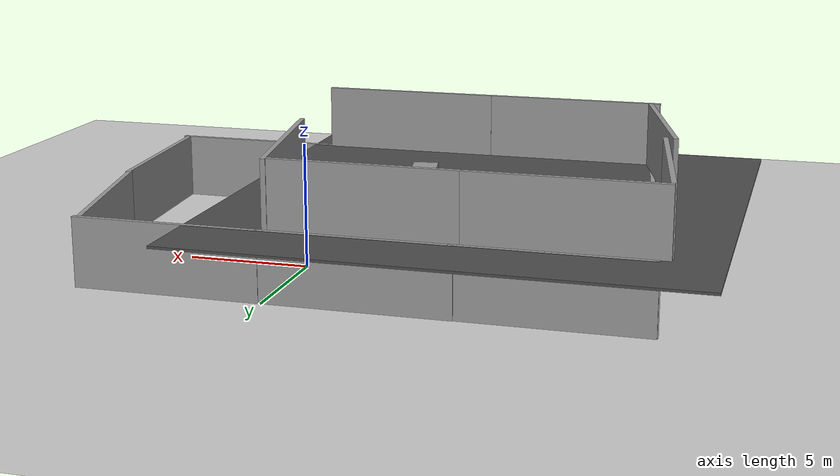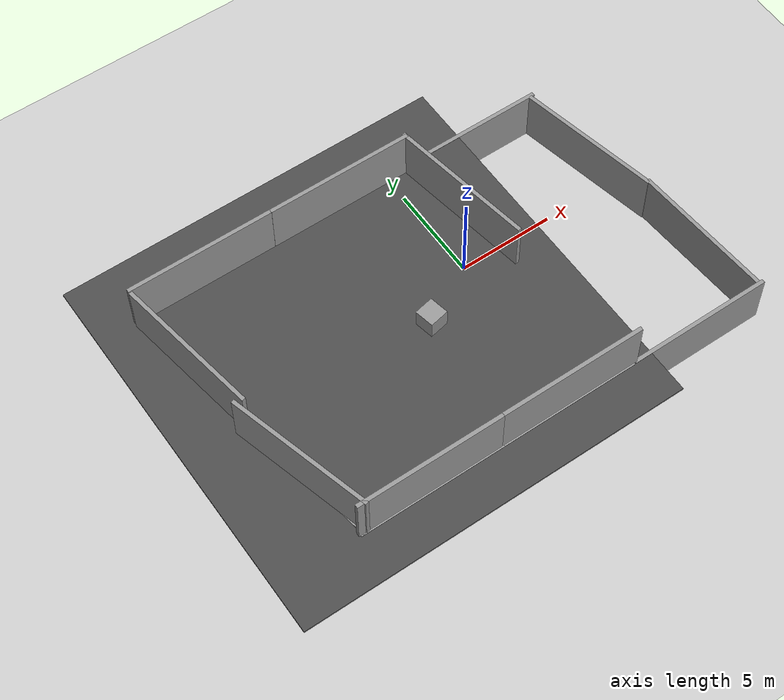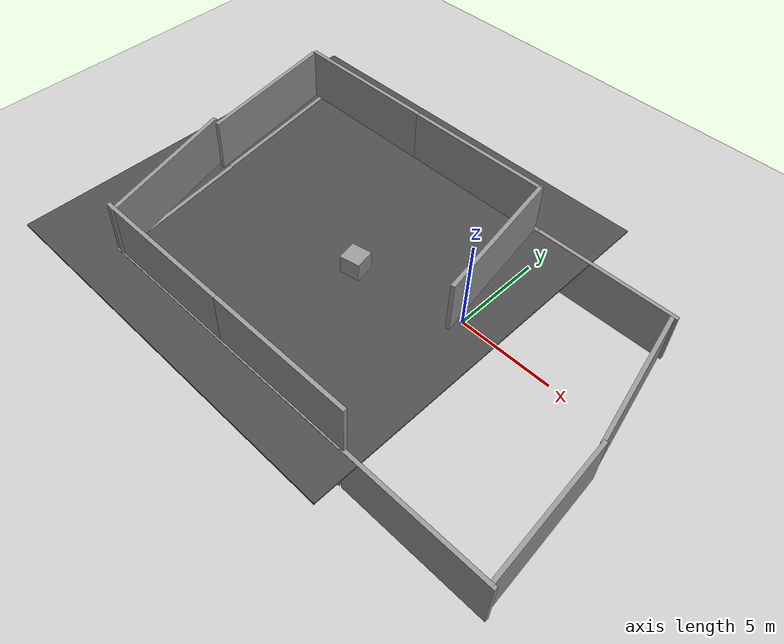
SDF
<sdf version="1.6">
 <world name="default">
  <light name="sun" type="directional">
   <pose>0 0 10 0 -0 0</pose>
   <diffuse>0.8 0.8 0.8 1</diffuse>
   <specular>0.1 0.1 0.1 1</specular>
   <attenuation>
    <range>1000</range>
    <constant>0.9</constant>
    <linear>0.01</linear>
    <quadratic>0.001</quadratic>
   </attenuation>
   <direction>-0.5 0.5 -1</direction>
  </light>
  <model name="ground_plane">
   <static>1</static>
   <link name="link">
    <collision name="collision">
     <geometry><plane><normal>0 0 1</normal><size>100 100</size></plane></geometry>
     <surface><friction><ode><mu>100</mu><mu2>50</mu2></ode></friction></surface>
    </collision>
    <visual name="visual">
     <cast_shadows>0</cast_shadows>
     <geometry><plane><normal>0 0 1</normal><size>100 100</size></plane></geometry>
     <material>
      <script><uri>file://media/materials/scripts/gazebo.material</uri><name>Gazebo/Grey</name></script>
     </material>
    </visual>
   </link>
  </model>
  <gravity>0 0 -9.8</gravity>
  <magnetic_field>6e-06 2.3e-05 -4.2e-05</magnetic_field>
  <atmosphere type="adiabatic"/>
  <physics name="default_physics" default="0" type="ode">
   <max_step_size>0.001</max_step_size>
   <real_time_factor>1</real_time_factor>
   <real_time_update_rate>1000</real_time_update_rate>
  </physics>
  <scene><ambient>0.4 0.4 0.4 1</ambient><background>0.7 0.7 0.7 1</background><shadows>1</shadows></scene>
  <spherical_coordinates>
   <surface_model>EARTH_WGS84</surface_model>
   <latitude_deg>0</latitude_deg>
   <longitude_deg>0</longitude_deg>
   <elevation>0</elevation>
   <heading_deg>0</heading_deg>
  </spherical_coordinates>
  <model name="grey_wall">
   <static>1</static>
   <link name="link">
    <pose>0 0 1.4 0 -0 0</pose>
    <collision name="collision"><geometry><box><size>7.5 0.2 2.8</size></box></geometry></collision>
    <visual name="visual">
     <cast_shadows>0</cast_shadows>
     <geometry><box><size>7.5 0.2 2.8</size></box></geometry>
     <material>
      <script>
       <uri>model://grey_wall/materials/scripts</uri>
       <uri>model://grey_wall/materials/textures</uri>
       <name>vrc/grey_wall</name>
      </script>
     </material>
    </visual>
   </link>
   <pose>5.9411 -9.87012 0 0 -0 0</pose>
  </model>
  <model name="grey_wall_clone">
   <static>1</static>
   <link name="link">
    <pose>0 0 1.4 0 -0 0</pose>
    <collision name="collision"><geometry><box><size>7.5 0.2 2.8</size></box></geometry></collision>
    <visual name="visual">
     <cast_shadows>0</cast_shadows>
     <geometry><box><size>7.5 0.2 2.8</size></box></geometry>
     <material>
      <script>
       <uri>model://grey_wall/materials/scripts</uri>
       <uri>model://grey_wall/materials/textures</uri>
       <name>vrc/grey_wall</name>
      </script>
     </material>
    </visual>
   </link>
   <pose>-1.62631 -9.88557 0 0 -0 0</pose>
  </model>
  <model name="grey_wall_clone_0">
   <static>1</static>
   <link name="link">
    <pose>0 0 1.4 0 -0 0</pose>
    <collision name="collision"><geometry><box><size>7.5 0.2 2.8</size></box></geometry></collision>
    <visual name="visual">
     <cast_shadows>0</cast_shadows>
     <geometry><box><size>7.5 0.2 2.8</size></box></geometry>
     <material>
      <script>
       <uri>model://grey_wall/materials/scripts</uri>
       <uri>model://grey_wall/materials/textures</uri>
       <name>vrc/grey_wall</name>
      </script>
     </material>
    </visual>
   </link>
   <pose>-8.82697 -9.88725 0 0 -0 0</pose>
  </model>
  <model name="grey_wall_clone_1">
   <static>1</static>
   <link name="link">
    <pose>0 0 1.4 0 -0 0</pose>
    <collision name="collision"><geometry><box><size>7.5 0.2 2.8</size></box></geometry></collision>
    <visual name="visual">
     <cast_shadows>0</cast_shadows>
     <geometry><box><size>7.5 0.2 2.8</size></box></geometry>
     <material>
      <script>
       <uri>model://grey_wall/materials/scripts</uri>
       <uri>model://grey_wall/materials/textures</uri>
       <name>vrc/grey_wall</name>
      </script>
     </material>
    </visual>
   </link>
   <pose>-12.9131 -6.23621 0 0 -0 1.71464</pose>
  </model>
  <model name="grey_wall_clone_1_clone">
   <static>1</static>
   <link name="link">
    <pose>0 0 1.4 0 -0 0</pose>
    <collision name="collision"><geometry><box><size>7.5 0.2 2.8</size></box></geometry></collision>
    <visual name="visual">
     <cast_shadows>0</cast_shadows>
     <geometry><box><size>7.5 0.2 2.8</size></box></geometry>
     <material>
      <script>
       <uri>model://grey_wall/materials/scripts</uri>
       <uri>model://grey_wall/materials/textures</uri>
       <name>vrc/grey_wall</name>
      </script>
     </material>
    </visual>
   </link>
   <pose>-14.0137 1.14074 0 0 -0 1.71464</pose>
  </model>
  <model name="grey_wall_clone_0_clone">
   <static>1</static>
   <link name="link">
    <pose>0 0 1.4 0 -0 0</pose>
    <collision name="collision"><geometry><box><size>7.5 0.2 2.8</size></box></geometry></collision>
    <visual name="visual">
     <cast_shadows>0</cast_shadows>
     <geometry><box><size>7.5 0.2 2.8</size></box></geometry>
     <material>
      <script>
       <uri>model://grey_wall/materials/scripts</uri>
       <uri>model://grey_wall/materials/textures</uri>
       <name>vrc/grey_wall</name>
      </script>
     </material>
    </visual>
   </link>
   <pose>-10.8585 4.82392 0 0 -0 0</pose>
  </model>
  <model name="grey_wall_clone_0_clone_0">
   <static>1</static>
   <link name="link">
    <pose>0 0 1.4 0 -0 0</pose>
    <collision name="collision"><geometry><box><size>7.5 0.2 2.8</size></box></geometry></collision>
    <visual name="visual">
     <cast_shadows>0</cast_shadows>
     <geometry><box><size>7.5 0.2 2.8</size></box></geometry>
     <material>
      <script>
       <uri>model://grey_wall/materials/scripts</uri>
       <uri>model://grey_wall/materials/textures</uri>
       <name>vrc/grey_wall</name>
      </script>
     </material>
    </visual>
   </link>
   <pose>-3.5747 4.85596 0 0 -0 0</pose>
  </model>
  <model name="grey_wall_clone_0_clone_1">
   <static>1</static>
   <link name="link">
    <pose>0 0 1.4 0 -0 0</pose>
    <collision name="collision"><geometry><box><size>7.5 0.2 2.8</size></box></geometry></collision>
    <visual name="visual">
     <cast_shadows>0</cast_shadows>
     <geometry><box><size>7.5 0.2 2.8</size></box></geometry>
     <material>
      <script>
       <uri>model://grey_wall/materials/scripts</uri>
       <uri>model://grey_wall/materials/textures</uri>
       <name>vrc/grey_wall</name>
      </script>
     </material>
    </visual>
   </link>
   <pose>9.19737 -6.11998 0 0 -0 1.64056</pose>
  </model>
  <model name="grey_wall_clone_0_clone_1_clone">
   <static>1</static>
   <link name="link">
    <pose>0 0 1.4 0 -0 0</pose>
    <collision name="collision"><geometry><box><size>7.5 0.2 2.8</size></box></geometry></collision>
    <visual name="visual">
     <cast_shadows>0</cast_shadows>
     <geometry><box><size>7.5 0.2 2.8</size></box></geometry>
     <material>
      <script>
       <uri>model://grey_wall/materials/scripts</uri>
       <uri>model://grey_wall/materials/textures</uri>
       <name>vrc/grey_wall</name>
      </script>
     </material>
    </visual>
   </link>
   <pose>8.13916 1.1548 0 0 -0 1.7754</pose>
  </model>
  <model name="grey_wall_clone_0_clone_0_clone">
   <static>1</static>
   <link name="link">
    <pose>0 0 1.4 0 -0 0</pose>
    <collision name="collision"><geometry><box><size>7.5 0.2 2.8</size></box></geometry></collision>
    <visual name="visual">
     <cast_shadows>0</cast_shadows>
     <geometry><box><size>7.5 0.2 2.8</size></box></geometry>
     <material>
      <script>
       <uri>model://grey_wall/materials/scripts</uri>
       <uri>model://grey_wall/materials/textures</uri>
       <name>vrc/grey_wall</name>
      </script>
     </material>
    </visual>
   </link>
   <pose>3.85959 4.8758 0 0 -0 0</pose>
  </model>
  <model name="asphalt_plane_0">
   <static>1</static>
   <link name="link">
    <collision name="collision"><geometry><box><size>20 20 0.1</size></box></geometry></collision>
    <visual name="visual">
     <cast_shadows>0</cast_shadows>
     <geometry><box><size>20 20 0.1</size></box></geometry>
     <material>
      <script>
       <uri>model://asphalt_plane/materials/scripts</uri>
       <uri>model://asphalt_plane/materials/textures</uri>
       <name>vrc/asphalt</name>
      </script>
     </material>
    </visual>
   </link>
   <pose>-6.91323 -2.16638 2.73555 0 -0 0</pose>
  </model>
  <model name="grey_wall_clone_2">
   <static>1</static>
   <link name="link">
    <pose>0 0 1.4 0 -0 0</pose>
    <collision name="collision"><geometry><box><size>7.5 0.2 2.8</size></box></geometry></collision>
    <visual name="visual">
     <cast_shadows>0</cast_shadows>
     <geometry><box><size>7.5 0.2 2.8</size></box></geometry>
     <material>
      <script>
       <uri>model://grey_wall/materials/scripts</uri>
       <uri>model://grey_wall/materials/textures</uri>
       <name>vrc/grey_wall</name>
      </script>
     </material>
    </visual>
   </link>
   <pose>-8.919 -9.81201 2.67922 0 -0 0</pose>
  </model>
  <model name="grey_wall_clone_2_clone">
   <static>1</static>
   <link name="link">
    <pose>0 0 1.4 0 -0 0</pose>
    <collision name="collision"><geometry><box><size>7.5 0.2 2.8</size></box></geometry></collision>
    <visual name="visual">
     <cast_shadows>0</cast_shadows>
     <geometry><box><size>7.5 0.2 2.8</size></box></geometry>
     <material>
      <script>
       <uri>model://grey_wall/materials/scripts</uri>
       <uri>model://grey_wall/materials/textures</uri>
       <name>vrc/grey_wall</name>
      </script>
     </material>
    </visual>
   </link>
   <pose>-1.47057 -9.80549 2.67922 0 -0 0</pose>
  </model>
  <model name="grey_wall_clone_2_clone_0">
   <static>1</static>
   <link name="link">
    <pose>0 0 1.4 0 -0 0</pose>
    <collision name="collision"><geometry><box><size>7.5 0.2 2.8</size></box></geometry></collision>
    <visual name="visual">
     <cast_shadows>0</cast_shadows>
     <geometry><box><size>7.5 0.2 2.8</size></box></geometry>
     <material>
      <script>
       <uri>model://grey_wall/materials/scripts</uri>
       <uri>model://grey_wall/materials/textures</uri>
       <name>vrc/grey_wall</name>
      </script>
     </material>
    </visual>
   </link>
   <pose>-11.2449 4.6355 2.67922 0 -0 0</pose>
  </model>
  <model name="grey_wall_clone_2_clone_1">
   <static>1</static>
   <link name="link">
    <pose>0 0 1.4 0 -0 0</pose>
    <collision name="collision"><geometry><box><size>7.5 0.2 2.8</size></box></geometry></collision>
    <visual name="visual">
     <cast_shadows>0</cast_shadows>
     <geometry><box><size>7.5 0.2 2.8</size></box></geometry>
     <material>
      <script>
       <uri>model://grey_wall/materials/scripts</uri>
       <uri>model://grey_wall/materials/textures</uri>
       <name>vrc/grey_wall</name>
      </script>
     </material>
    </visual>
   </link>
   <pose>-13.1886 -6.32399 2.67922 0 -0 1.83582</pose>
  </model>
  <model name="grey_wall_clone_2_clone_1_clone">
   <static>1</static>
   <link name="link">
    <pose>0 0 1.4 0 -0 0</pose>
    <collision name="collision"><geometry><box><size>7.5 0.2 2.8</size></box></geometry></collision>
    <visual name="visual">
     <cast_shadows>0</cast_shadows>
     <geometry><box><size>7.5 0.2 2.8</size></box></geometry>
     <material>
      <script>
       <uri>model://grey_wall/materials/scripts</uri>
       <uri>model://grey_wall/materials/textures</uri>
       <name>vrc/grey_wall</name>
      </script>
     </material>
    </visual>
   </link>
   <pose>-14.3341 0.785159 2.67922 0 -0 1.73076</pose>
  </model>
  <model name="grey_wall_clone_2_clone_0_clone">
   <static>1</static>
   <link name="link">
    <pose>0 0 1.4 0 -0 0</pose>
    <collision name="collision"><geometry><box><size>7.5 0.2 2.8</size></box></geometry></collision>
    <visual name="visual">
     <cast_shadows>0</cast_shadows>
     <geometry><box><size>7.5 0.2 2.8</size></box></geometry>
     <material>
      <script>
       <uri>model://grey_wall/materials/scripts</uri>
       <uri>model://grey_wall/materials/textures</uri>
       <name>vrc/grey_wall</name>
      </script>
     </material>
    </visual>
   </link>
   <pose>-3.79582 4.6308 2.67922 0 -0 0</pose>
  </model>
  <model name="grey_wall_clone_2_clone_1_clone_clone">
   <static>1</static>
   <link name="link">
    <pose>0 0 1.4 0 -0 0</pose>
    <collision name="collision"><geometry><box><size>7.5 0.2 2.8</size></box></geometry></collision>
    <visual name="visual">
     <cast_shadows>0</cast_shadows>
     <geometry><box><size>7.5 0.2 2.8</size></box></geometry>
     <material>
      <script>
       <uri>model://grey_wall/materials/scripts</uri>
       <uri>model://grey_wall/materials/textures</uri>
       <name>vrc/grey_wall</name>
      </script>
     </material>
    </visual>
   </link>
   <pose>0.457689 1.08518 2.67922 0 -0 1.73076</pose>
  </model>
  <model name="unit_box_0">
   <pose>-4.06377 -3.02828 3.25295 0 0 -1.3786</pose>
   <link name="link">
    <inertial>
     <mass>1</mass>
     <inertia>
      <ixx>0.166667</ixx>
      <ixy>0</ixy>
      <ixz>0</ixz>
      <iyy>0.166667</iyy>
      <iyz>0</iyz>
      <izz>0.166667</izz>
     </inertia>
    </inertial>
    <collision name="collision"><geometry><box><size>1 1 1</size></box></geometry></collision>
    <visual name="visual">
     <geometry><box><size>1 1 1</size></box></geometry>
     <material>
      <script><name>Gazebo/Grey</name><uri>file://media/materials/scripts/gazebo.material</uri></script>
     </material>
    </visual>
   </link>
  </model>
 </world>
</sdf>
